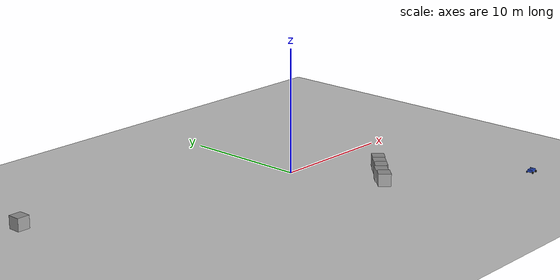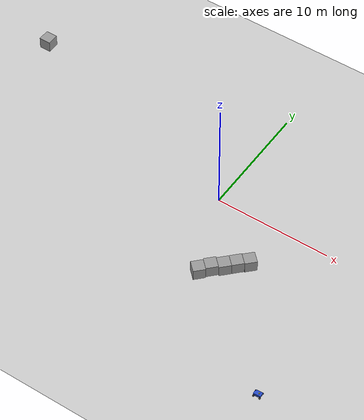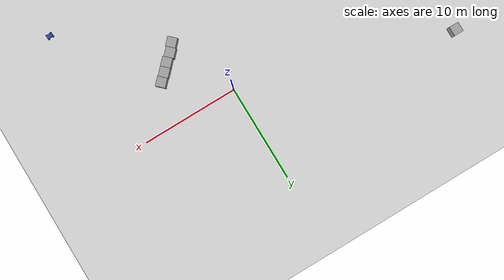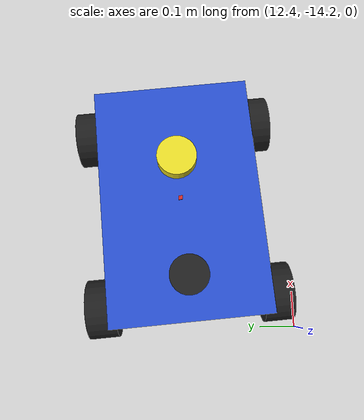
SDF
<sdf version="1.7">
 <world name="default">
  <light name="sun" type="directional">
   <pose>0 0 10 0 -0 0</pose>
   <diffuse>0.8 0.8 0.8 1</diffuse>
   <specular>0.2 0.2 0.2 1</specular>
   <attenuation>
    <range>1000</range>
    <constant>0.9</constant>
    <linear>0.01</linear>
    <quadratic>0.001</quadratic>
   </attenuation>
   <direction>-0.5 0.1 -0.9</direction>
   <spot><inner_angle>0</inner_angle><outer_angle>0</outer_angle><falloff>0</falloff></spot>
  </light>
  <model name="ground_plane">
   <static>1</static>
   <link name="link">
    <collision name="collision">
     <geometry><plane><normal>0 0 1</normal><size>100 100</size></plane></geometry>
     <surface>
      <contact><collide_bitmask>65535</collide_bitmask></contact>
      <friction><ode><mu>100</mu><mu2>50</mu2></ode></friction>
     </surface>
    </collision>
    <visual name="visual">
     <cast_shadows>0</cast_shadows>
     <geometry><plane><normal>0 0 1</normal><size>100 100</size></plane></geometry>
     <material>
      <script><uri>file://media/materials/scripts/gazebo.material</uri><name>Gazebo/Grey</name></script>
     </material>
    </visual>
   </link>
  </model>
  <gravity>0 0 -9.8</gravity>
  <magnetic_field>6e-06 2.3e-05 -4.2e-05</magnetic_field>
  <atmosphere type="adiabatic"/>
  <physics type="ode">
   <max_step_size>0.001</max_step_size>
   <real_time_factor>1</real_time_factor>
   <real_time_update_rate>1000</real_time_update_rate>
  </physics>
  <scene><ambient>0.4 0.4 0.4 1</ambient><background>0.7 0.7 0.7 1</background><shadows>1</shadows></scene>
  <audio><device>default</device></audio>
  <spherical_coordinates>
   <surface_model>EARTH_WGS84</surface_model>
   <latitude_deg>0</latitude_deg>
   <longitude_deg>0</longitude_deg>
   <elevation>0</elevation>
   <heading_deg>0</heading_deg>
  </spherical_coordinates>
  <model name="my_robot">
   <link name="base_link">
    <inertial>
     <pose>-0 0 0.003756 0 -0 0</pose>
     <mass>20.5</mass>
     <inertia>
      <ixx>0.348871</ixx>
      <ixy>0</ixy>
      <ixz>0.0073</ixz>
      <iyy>0.699871</iyy>
      <iyz>0</iyz>
      <izz>0.884525</izz>
     </inertia>
    </inertial>
    <collision name="base_link_collision"><geometry><box><size>0.6 0.4 0.2</size></box></geometry></collision>
    <collision name="base_link_fixed_joint_lump__gps_rod_collision_1">
     <pose>-0.2 0 0.2 0 -0 0</pose>
     <geometry><cylinder><length>0.2</length><radius>0.01</radius></cylinder></geometry>
    </collision>
    <collision name="base_link_fixed_joint_lump__gps_link_collision_2">
     <pose>-0.2 0 0.3 0 -0 0</pose>
     <geometry><cylinder><length>0.02</length><radius>0.04</radius></cylinder></geometry>
    </collision>
    <collision name="base_link_fixed_joint_lump__imu_link_collision_3">
     <pose>0 0 0.1 0 -0 0</pose>
     <geometry><box><size>0.01 0.01 0.01</size></box></geometry>
    </collision>
    <collision name="base_link_fixed_joint_lump__laser_frame_collision_4">
     <pose>0.1 0 0.12 0 -0 0</pose>
     <geometry><cylinder><length>0.04</length><radius>0.05</radius></cylinder></geometry>
    </collision>
    <collision name="base_link_fixed_joint_lump__stereocamera_link_collision_5">
     <pose>0.3 0 0.05 0 -0 0</pose>
     <geometry><box><size>0.03 0.12 0.03</size></box></geometry>
    </collision>
    <visual name="base_link_visual">
     <geometry><box><size>0.6 0.4 0.2</size></box></geometry>
     <material>
      <script><name>Gazebo/Blue</name><uri>file://media/materials/scripts/gazebo.material</uri></script>
     </material>
    </visual>
    <visual name="base_link_fixed_joint_lump__gps_rod_visual_1">
     <pose>-0.2 0 0.2 0 -0 0</pose>
     <geometry><cylinder><length>0.2</length><radius>0.01</radius></cylinder></geometry>
     <material>
      <script><name>Gazebo/Grey</name><uri>file://media/materials/scripts/gazebo.material</uri></script>
     </material>
    </visual>
    <visual name="base_link_fixed_joint_lump__gps_link_visual_2">
     <pose>-0.2 0 0.3 0 -0 0</pose>
     <geometry><cylinder><length>0.02</length><radius>0.04</radius></cylinder></geometry>
     <material>
      <script><name>Gazebo/Black</name><uri>file://media/materials/scripts/gazebo.material</uri></script>
     </material>
    </visual>
    <visual name="base_link_fixed_joint_lump__imu_link_visual_3">
     <pose>0 0 0.1 0 -0 0</pose>
     <geometry><box><size>0.01 0.01 0.01</size></box></geometry>
     <material>
      <script><name>Gazebo/Red</name><uri>file://media/materials/scripts/gazebo.material</uri></script>
     </material>
    </visual>
    <visual name="base_link_fixed_joint_lump__laser_frame_visual_4">
     <pose>0.1 0 0.12 0 -0 0</pose>
     <geometry><cylinder><length>0.04</length><radius>0.05</radius></cylinder></geometry>
     <material>
      <script><name>Gazebo/Yellow</name><uri>file://media/materials/scripts/gazebo.material</uri></script>
     </material>
    </visual>
    <visual name="base_link_fixed_joint_lump__stereocamera_link_visual_5">
     <pose>0.3 0 0.05 0 -0 0</pose>
     <geometry><box><size>0.03 0.12 0.03</size></box></geometry>
     <material>
      <script><name>Gazebo/Grey</name><uri>file://media/materials/scripts/gazebo.material</uri></script>
     </material>
    </visual>
    <sensor name="gps_sensor" type="gps">
     <always_on>1</always_on>
     <update_rate>10</update_rate>
     <plugin name="gps_plugin" filename="libgazebo_ros_gps_sensor.so">
      <ros><remapping>~/out:=/gps/fix</remapping></ros>
      <output_type>sensor_msgs/NavSatFix</output_type>
      <frame_name>gps_link</frame_name>
     </plugin>
     <pose>-0.2 0 0.3 0 -0 0</pose>
    </sensor>
    <sensor name="imu_sensor" type="imu">
     <always_on>1</always_on>
     <update_rate>100</update_rate>
     <plugin name="imu_plugin" filename="libgazebo_ros_imu_sensor.so">
      <ros><remapping>~/out:=/imu</remapping></ros>
      <output_type>sensor_msgs/Imu</output_type>
      <frame_name>imu_link</frame_name>
     </plugin>
     <pose>0 0 0.1 0 -0 0</pose>
    </sensor>
    <sensor name="lidar" type="ray">
     <update_rate>20</update_rate>
     <visualize>1</visualize>
     <ray>
      <scan>
       <horizontal>
        <samples>360</samples>
        <min_angle>-3.14159</min_angle>
        <max_angle>3.14159</max_angle>
        <resolution>1</resolution>
       </horizontal>
       <vertical><samples>1</samples><min_angle>0</min_angle><max_angle>0</max_angle></vertical>
      </scan>
      <range><min>0.12</min><max>10</max></range>
     </ray>
     <plugin name="gazebo_ros_laser" filename="libgazebo_ros_ray_sensor.so">
      <ros><remapping>~/out:=scan</remapping></ros>
      <output_type>sensor_msgs/LaserScan</output_type>
      <frame_name>laser_frame</frame_name>
     </plugin>
     <pose>0.1 0 0.12 0 -0 0</pose>
    </sensor>
    <sensor name="camera" type="depth">
     <update_rate>30</update_rate>
     <visualize>1</visualize>
     <camera>
      <horizontal_fov>1.57079</horizontal_fov>
      <image><width>640</width><height>480</height><format>R8G8B8</format></image>
      <clip><near>0.1</near><far>10</far></clip>
     </camera>
     <plugin name="camera_controller" filename="libgazebo_ros_camera.so">
      <ros>
       <remapping>camera/image_raw:=colour/image_raw</remapping>
       <remapping>camera/depth/image_raw:=depth/image_raw</remapping>
       <remapping>camera/points:=depth/colour/points</remapping>
      </ros>
      <camera_name>camera</camera_name>
      <frame_name>stereocamera_link_optical</frame_name>
     </plugin>
     <pose>0.3 0 0.05 0 -0 0</pose>
    </sensor>
    <sensor name="camera" type="camera">
     <update_rate>30</update_rate>
     <visualize>1</visualize>
     <camera>
      <horizontal_fov>1.57079</horizontal_fov>
      <image><width>640</width><height>480</height><format>R8G8B8</format></image>
      <clip><near>0.1</near><far>10</far></clip>
     </camera>
     <plugin name="camera" filename="libgazebo_ros_camera.so">
      <ros>
       <remapping>camera/image_raw:=rgb/image_raw</remapping>
       <remapping>camera/points:=rgb/points</remapping>
      </ros>
      <camera_name>camera</camera_name>
      <frame_name>stereocamera_link</frame_name>
     </plugin>
     <pose>0.3 0 0.05 0 -0 0</pose>
    </sensor>
   </link>
   <joint name="front_left_joint" type="revolute">
    <pose relative_to="base_link">0.25 0.24 -0.1 0 -0 0</pose>
    <parent>base_link</parent>
    <child>front_left_wheel</child>
    <axis>
     <xyz>0 1 0</xyz>
     <limit><lower>-1e+16</lower><upper>1e+16</upper></limit>
     <dynamics><spring_reference>0</spring_reference><spring_stiffness>0</spring_stiffness></dynamics>
    </axis>
   </joint>
   <link name="front_left_wheel">
    <pose relative_to="front_left_joint">0 0 0 0 -0 0</pose>
    <inertial>
     <mass>2</mass>
     <inertia><ixx>0.0042</ixx><ixy>0</ixy><ixz>0</ixz><iyy>0.0042</iyy><iyz>0</iyz><izz>0.0064</izz></inertia>
    </inertial>
    <collision name="front_left_wheel_collision">
     <pose>0 0 0 1.5708 -0 0</pose>
     <geometry><cylinder><length>0.08</length><radius>0.08</radius></cylinder></geometry>
     <surface><friction><ode><mu>0.1</mu><mu2>0.1</mu2></ode></friction></surface>
    </collision>
    <visual name="front_left_wheel_visual">
     <pose>0 0 0 1.5708 -0 0</pose>
     <geometry><cylinder><length>0.08</length><radius>0.08</radius></cylinder></geometry>
     <material>
      <script><name>Gazebo/Black</name><uri>file://media/materials/scripts/gazebo.material</uri></script>
     </material>
    </visual>
   </link>
   <joint name="front_right_joint" type="revolute">
    <pose relative_to="base_link">0.25 -0.24 -0.1 0 -0 0</pose>
    <parent>base_link</parent>
    <child>front_right_wheel</child>
    <axis>
     <xyz>0 1 0</xyz>
     <limit><lower>-1e+16</lower><upper>1e+16</upper></limit>
     <dynamics><spring_reference>0</spring_reference><spring_stiffness>0</spring_stiffness></dynamics>
    </axis>
   </joint>
   <link name="front_right_wheel">
    <pose relative_to="front_right_joint">0 0 0 0 -0 0</pose>
    <inertial>
     <mass>2</mass>
     <inertia><ixx>0.0042</ixx><ixy>0</ixy><ixz>0</ixz><iyy>0.0042</iyy><iyz>0</iyz><izz>0.0064</izz></inertia>
    </inertial>
    <collision name="front_right_wheel_collision">
     <pose>0 0 0 1.5708 -0 0</pose>
     <geometry><cylinder><length>0.08</length><radius>0.08</radius></cylinder></geometry>
     <surface><friction><ode><mu>0.1</mu><mu2>0.1</mu2></ode></friction></surface>
    </collision>
    <visual name="front_right_wheel_visual">
     <pose>0 0 0 1.5708 -0 0</pose>
     <geometry><cylinder><length>0.08</length><radius>0.08</radius></cylinder></geometry>
     <material>
      <script><name>Gazebo/Black</name><uri>file://media/materials/scripts/gazebo.material</uri></script>
     </material>
    </visual>
   </link>
   <joint name="rear_left_joint" type="revolute">
    <pose relative_to="base_link">-0.25 0.24 -0.1 0 -0 0</pose>
    <parent>base_link</parent>
    <child>rear_left_wheel</child>
    <axis>
     <xyz>0 1 0</xyz>
     <limit><lower>-1e+16</lower><upper>1e+16</upper></limit>
     <dynamics><spring_reference>0</spring_reference><spring_stiffness>0</spring_stiffness></dynamics>
    </axis>
   </joint>
   <link name="rear_left_wheel">
    <pose relative_to="rear_left_joint">0 0 0 0 -0 0</pose>
    <inertial>
     <mass>2</mass>
     <inertia><ixx>0.0042</ixx><ixy>0</ixy><ixz>0</ixz><iyy>0.0042</iyy><iyz>0</iyz><izz>0.0064</izz></inertia>
    </inertial>
    <collision name="rear_left_wheel_collision">
     <pose>0 0 0 1.5708 -0 0</pose>
     <geometry><cylinder><length>0.08</length><radius>0.08</radius></cylinder></geometry>
     <surface><friction><ode><mu>0.1</mu><mu2>0.1</mu2></ode></friction></surface>
    </collision>
    <visual name="rear_left_wheel_visual">
     <pose>0 0 0 1.5708 -0 0</pose>
     <geometry><cylinder><length>0.08</length><radius>0.08</radius></cylinder></geometry>
     <material>
      <script><name>Gazebo/Black</name><uri>file://media/materials/scripts/gazebo.material</uri></script>
     </material>
    </visual>
   </link>
   <joint name="rear_right_joint" type="revolute">
    <pose relative_to="base_link">-0.25 -0.24 -0.1 0 -0 0</pose>
    <parent>base_link</parent>
    <child>rear_right_wheel</child>
    <axis>
     <xyz>0 1 0</xyz>
     <limit><lower>-1e+16</lower><upper>1e+16</upper></limit>
     <dynamics><spring_reference>0</spring_reference><spring_stiffness>0</spring_stiffness></dynamics>
    </axis>
   </joint>
   <link name="rear_right_wheel">
    <pose relative_to="rear_right_joint">0 0 0 0 -0 0</pose>
    <inertial>
     <mass>2</mass>
     <inertia><ixx>0.0042</ixx><ixy>0</ixy><ixz>0</ixz><iyy>0.0042</iyy><iyz>0</iyz><izz>0.0064</izz></inertia>
    </inertial>
    <collision name="rear_right_wheel_collision">
     <pose>0 0 0 1.5708 -0 0</pose>
     <geometry><cylinder><length>0.08</length><radius>0.08</radius></cylinder></geometry>
     <surface><friction><ode><mu>0.1</mu><mu2>0.1</mu2></ode></friction></surface>
    </collision>
    <visual name="rear_right_wheel_visual">
     <pose>0 0 0 1.5708 -0 0</pose>
     <geometry><cylinder><length>0.08</length><radius>0.08</radius></cylinder></geometry>
     <material>
      <script><name>Gazebo/Black</name><uri>file://media/materials/scripts/gazebo.material</uri></script>
     </material>
    </visual>
   </link>
   <static>0</static>
   <plugin name="rover_diff_drive" filename="libgazebo_ros_diff_drive.so">
    <num_wheel_pairs>2</num_wheel_pairs>
    <left_joint>front_left_joint</left_joint>
    <left_joint>rear_left_joint</left_joint>
    <right_joint>front_right_joint</right_joint>
    <right_joint>rear_right_joint</right_joint>
    <wheel_separation>0.48</wheel_separation>
    <wheel_diameter>0.16</wheel_diameter>
    <max_wheel_torque>200</max_wheel_torque>
    <max_wheel_acceleration>10.0</max_wheel_acceleration>
    <publish_odom>1</publish_odom>
    <publish_odom_tf>1</publish_odom_tf>
    <publish_wheel_tf>1</publish_wheel_tf>
    <odometry_frame>odom</odometry_frame>
    <robot_base_frame>base_link</robot_base_frame>
   </plugin>
   <pose>12.733 -13.8741 0.18 0 -0 0.0765</pose>
  </model>
  <model name="unit_box">
   <pose>3.45153 -6.24942 0.5 0 0 -0.766981</pose>
   <link name="link">
    <inertial>
     <mass>1</mass>
     <inertia>
      <ixx>0.166667</ixx>
      <ixy>0</ixy>
      <ixz>0</ixz>
      <iyy>0.166667</iyy>
      <iyz>0</iyz>
      <izz>0.166667</izz>
     </inertia>
    </inertial>
    <collision name="collision"><geometry><box><size>1 1 1</size></box></geometry></collision>
    <visual name="visual">
     <geometry><box><size>1 1 1</size></box></geometry>
     <material>
      <script><name>Gazebo/Grey</name><uri>file://media/materials/scripts/gazebo.material</uri></script>
     </material>
    </visual>
   </link>
  </model>
  <model name="unit_box_0">
   <pose>-21.4573 6.19682 0.499995 0 1e-05 0</pose>
   <link name="link">
    <inertial>
     <mass>1</mass>
     <inertia>
      <ixx>0.166667</ixx>
      <ixy>0</ixy>
      <ixz>0</ixz>
      <iyy>0.166667</iyy>
      <iyz>0</iyz>
      <izz>0.166667</izz>
     </inertia>
    </inertial>
    <collision name="collision"><geometry><box><size>1 1 1</size></box></geometry></collision>
    <visual name="visual">
     <geometry><box><size>1 1 1</size></box></geometry>
     <material>
      <script><name>Gazebo/Grey</name><uri>file://media/materials/scripts/gazebo.material</uri></script>
     </material>
    </visual>
   </link>
  </model>
  <model name="unit_box_clone">
   <pose>4.22401 -5.60483 0.5 0 0 -0.766944</pose>
   <link name="link">
    <inertial>
     <mass>1</mass>
     <inertia>
      <ixx>0.166667</ixx>
      <ixy>0</ixy>
      <ixz>0</ixz>
      <iyy>0.166667</iyy>
      <iyz>0</iyz>
      <izz>0.166667</izz>
     </inertia>
    </inertial>
    <collision name="collision"><geometry><box><size>1 1 1</size></box></geometry></collision>
    <visual name="visual">
     <geometry><box><size>1 1 1</size></box></geometry>
     <material>
      <script><name>Gazebo/Grey</name><uri>file://media/materials/scripts/gazebo.material</uri></script>
     </material>
    </visual>
   </link>
  </model>
  <model name="unit_box_clone_0">
   <pose>4.91734 -4.88405 0.5 0 -0 -0.766896</pose>
   <link name="link">
    <inertial>
     <mass>1</mass>
     <inertia>
      <ixx>0.166667</ixx>
      <ixy>0</ixy>
      <ixz>0</ixz>
      <iyy>0.166667</iyy>
      <iyz>0</iyz>
      <izz>0.166667</izz>
     </inertia>
    </inertial>
    <collision name="collision"><geometry><box><size>1 1 1</size></box></geometry></collision>
    <visual name="visual">
     <geometry><box><size>1 1 1</size></box></geometry>
     <material>
      <script><name>Gazebo/Grey</name><uri>file://media/materials/scripts/gazebo.material</uri></script>
     </material>
    </visual>
   </link>
  </model>
  <model name="unit_box_clone_1">
   <pose>5.64661 -4.19791 0.5 0 0 -0.766951</pose>
   <link name="link">
    <inertial>
     <mass>1</mass>
     <inertia>
      <ixx>0.166667</ixx>
      <ixy>0</ixy>
      <ixz>0</ixz>
      <iyy>0.166667</iyy>
      <iyz>0</iyz>
      <izz>0.166667</izz>
     </inertia>
    </inertial>
    <collision name="collision"><geometry><box><size>1 1 1</size></box></geometry></collision>
    <visual name="visual">
     <geometry><box><size>1 1 1</size></box></geometry>
     <material>
      <script><name>Gazebo/Grey</name><uri>file://media/materials/scripts/gazebo.material</uri></script>
     </material>
    </visual>
   </link>
  </model>
  <model name="unit_box_clone_2">
   <pose>2.81767 -7.02739 0.5 -0 -0 -0.766974</pose>
   <link name="link">
    <inertial>
     <mass>1</mass>
     <inertia>
      <ixx>0.166667</ixx>
      <ixy>0</ixy>
      <ixz>0</ixz>
      <iyy>0.166667</iyy>
      <iyz>0</iyz>
      <izz>0.166667</izz>
     </inertia>
    </inertial>
    <collision name="collision"><geometry><box><size>1 1 1</size></box></geometry></collision>
    <visual name="visual">
     <geometry><box><size>1 1 1</size></box></geometry>
     <material>
      <script><name>Gazebo/Grey</name><uri>file://media/materials/scripts/gazebo.material</uri></script>
     </material>
    </visual>
   </link>
  </model>
 </world>
</sdf>
